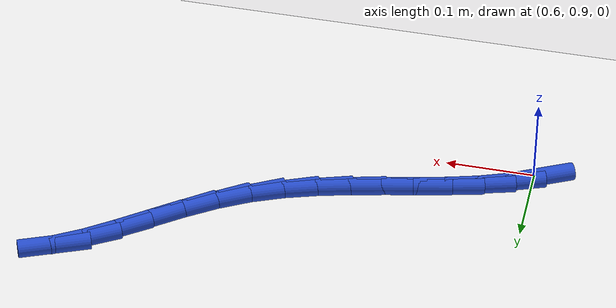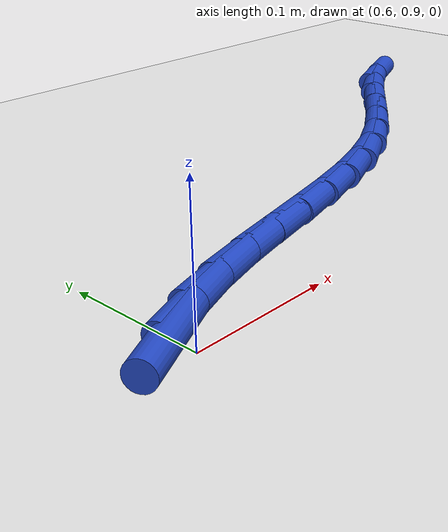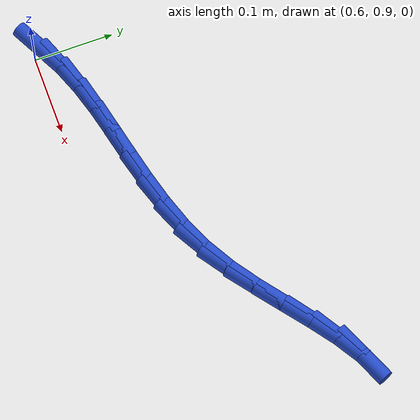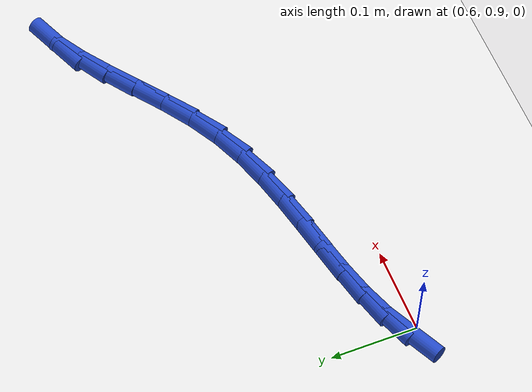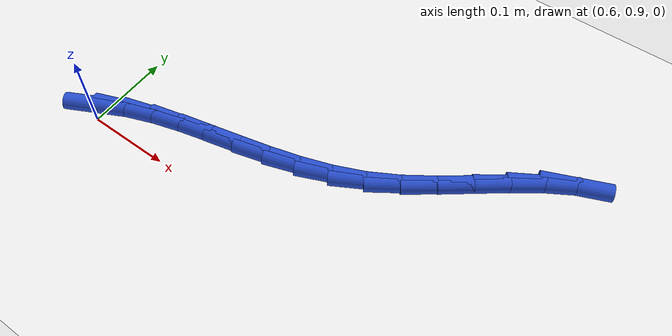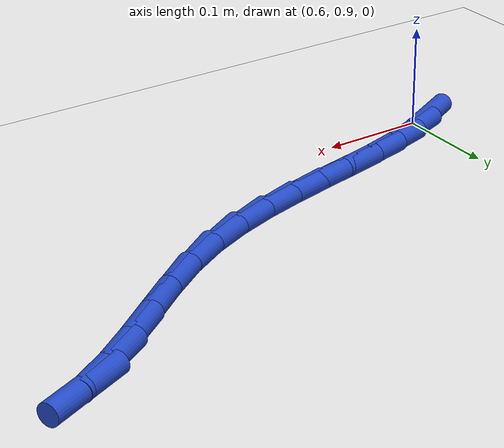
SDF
<sdf version="1.6">
 <world name="default">
  <model name="ground_plane">
   <static>1</static>
   <link name="link">
    <collision name="collision">
     <geometry><plane><normal>0 0 1</normal><size>100 100</size></plane></geometry>
     <surface><friction><ode><mu>100</mu><mu2>50</mu2></ode></friction></surface>
    </collision>
    <visual name="visual">
     <cast_shadows>0</cast_shadows>
     <geometry><plane><normal>0 0 1</normal><size>100 100</size></plane></geometry>
     <material>
      <script><uri>file://media/materials/scripts/gazebo.material</uri><name>Gazebo/WhiteGlow</name></script>
     </material>
    </visual>
   </link>
  </model>
  <model name="line">
   <link name="link_31">
    <pose>0.5928497393327049 0.9120968995679262 0.01 0 1.57 0.47000072901425355</pose>
    <collision name="collision">
     <geometry><cylinder><radius>0.01</radius><length>0.08</length></cylinder></geometry>
    </collision>
    <visual name="visual">
     <material>
      <script><name>Gazebo/Blue</name><uri>file://media/materials/scripts/gazebo.material</uri></script>
     </material>
     <geometry><cylinder><radius>0.01</radius><length>0.08</length></cylinder></geometry>
    </visual>
   </link>
   <link name="link_32">
    <pose>0.6231911719347277 0.927509340427059 0.01 0 1.57 0.36053438935371207</pose>
    <collision name="collision">
     <geometry><cylinder><radius>0.01</radius><length>0.08</length></cylinder></geometry>
    </collision>
    <visual name="visual">
     <material>
      <script><name>Gazebo/Blue</name><uri>file://media/materials/scripts/gazebo.material</uri></script>
     </material>
     <geometry><cylinder><radius>0.01</radius><length>0.08</length></cylinder></geometry>
    </visual>
   </link>
   <link name="link_33">
    <pose>0.6554221966028583 0.9396608581670598 0.01 0 1.57 0.28268333280211533</pose>
    <collision name="collision">
     <geometry><cylinder><radius>0.01</radius><length>0.08</length></cylinder></geometry>
    </collision>
    <visual name="visual">
     <material>
      <script><name>Gazebo/Blue</name><uri>file://media/materials/scripts/gazebo.material</uri></script>
     </material>
     <geometry><cylinder><radius>0.01</radius><length>0.08</length></cylinder></geometry>
    </visual>
   </link>
   <link name="link_34">
    <pose>0.6891720021524068 0.9494638869974044 0.01 0 1.57 0.2355085056326991</pose>
    <collision name="collision">
     <geometry><cylinder><radius>0.01</radius><length>0.08</length></cylinder></geometry>
    </collision>
    <visual name="visual">
     <material>
      <script><name>Gazebo/Blue</name><uri>file://media/materials/scripts/gazebo.material</uri></script>
     </material>
     <geometry><cylinder><radius>0.01</radius><length>0.08</length></cylinder></geometry>
    </visual>
   </link>
   <link name="link_35">
    <pose>0.7240666104640009 0.9578372469077019 0.01 0 1.57 0.21698126229757012</pose>
    <collision name="collision">
     <geometry><cylinder><radius>0.01</radius><length>0.08</length></cylinder></geometry>
    </collision>
    <visual name="visual">
     <material>
      <script><name>Gazebo/Blue</name><uri>file://media/materials/scripts/gazebo.material</uri></script>
     </material>
     <geometry><cylinder><radius>0.01</radius><length>0.08</length></cylinder></geometry>
    </visual>
   </link>
   <link name="link_36">
    <pose>0.7597320434182688 0.9656997578875618 0.01 0 1.57 0.225440373829663</pose>
    <collision name="collision">
     <geometry><cylinder><radius>0.01</radius><length>0.08</length></cylinder></geometry>
    </collision>
    <visual name="visual">
     <material>
      <script><name>Gazebo/Blue</name><uri>file://media/materials/scripts/gazebo.material</uri></script>
     </material>
     <geometry><cylinder><radius>0.01</radius><length>0.08</length></cylinder></geometry>
    </visual>
   </link>
   <link name="link_37">
    <pose>0.7957943228958384 0.9739702399265933 0.01 0 1.57 0.2599442628431979</pose>
    <collision name="collision">
     <geometry><cylinder><radius>0.01</radius><length>0.08</length></cylinder></geometry>
    </collision>
    <visual name="visual">
     <material>
      <script><name>Gazebo/Blue</name><uri>file://media/materials/scripts/gazebo.material</uri></script>
     </material>
     <geometry><cylinder><radius>0.01</radius><length>0.08</length></cylinder></geometry>
    </visual>
   </link>
   <link name="link_38">
    <pose>0.8318794707773378 0.9835675130144047 0.01 0 1.57 0.32002527751777865</pose>
    <collision name="collision">
     <geometry><cylinder><radius>0.01</radius><length>0.08</length></cylinder></geometry>
    </collision>
    <visual name="visual">
     <material>
      <script><name>Gazebo/Blue</name><uri>file://media/materials/scripts/gazebo.material</uri></script>
     </material>
     <geometry><cylinder><radius>0.01</radius><length>0.08</length></cylinder></geometry>
    </visual>
   </link>
   <link name="link_39">
    <pose>0.8676135089433947 0.9954103971406059 0.01 0 1.57 0.40497574484682314</pose>
    <collision name="collision">
     <geometry><cylinder><radius>0.01</radius><length>0.08</length></cylinder></geometry>
    </collision>
    <visual name="visual">
     <material>
      <script><name>Gazebo/Blue</name><uri>file://media/materials/scripts/gazebo.material</uri></script>
     </material>
     <geometry><cylinder><radius>0.01</radius><length>0.08</length></cylinder></geometry>
    </visual>
   </link>
   <link name="link_40">
    <pose>0.9026224592746372 1.0104177122948055 0.01 0 1.57 0.5106003617391673</pose>
    <collision name="collision">
     <geometry><cylinder><radius>0.01</radius><length>0.08</length></cylinder></geometry>
    </collision>
    <visual name="visual">
     <material>
      <script><name>Gazebo/Blue</name><uri>file://media/materials/scripts/gazebo.material</uri></script>
     </material>
     <geometry><cylinder><radius>0.01</radius><length>0.08</length></cylinder></geometry>
    </visual>
   </link>
   <link name="link_41">
    <pose>0.9365493048600816 1.029421739336805 0.01 0 1.57 0.5996888038411738</pose>
    <collision name="collision">
     <geometry><cylinder><radius>0.01</radius><length>0.08</length></cylinder></geometry>
    </collision>
    <visual name="visual">
     <material>
      <script><name>Gazebo/Blue</name><uri>file://media/materials/scripts/gazebo.material</uri></script>
     </material>
     <geometry><cylinder><radius>0.01</radius><length>0.08</length></cylinder></geometry>
    </visual>
   </link>
   <link name="link_42">
    <pose>0.9693173347401967 1.0518245878459385 0.01 0 1.57 0.6476635759384094</pose>
    <collision name="collision">
     <geometry><cylinder><radius>0.01</radius><length>0.08</length></cylinder></geometry>
    </collision>
    <visual name="visual">
     <material>
      <script><name>Gazebo/Blue</name><uri>file://media/materials/scripts/gazebo.material</uri></script>
     </material>
     <geometry><cylinder><radius>0.01</radius><length>0.08</length></cylinder></geometry>
    </visual>
   </link>
   <link name="link_43">
    <pose>1.001080038344064 1.0758538436968534 0.01 0 1.57 0.6570278179525036</pose>
    <collision name="collision">
     <geometry><cylinder><radius>0.01</radius><length>0.08</length></cylinder></geometry>
    </collision>
    <visual name="visual">
     <material>
      <script><name>Gazebo/Blue</name><uri>file://media/materials/scripts/gazebo.material</uri></script>
     </material>
     <geometry><cylinder><radius>0.01</radius><length>0.08</length></cylinder></geometry>
    </visual>
   </link>
   <link name="link_44">
    <pose>1.0319977232096125 1.099702305548983 0.01 0 1.57 0.6260400267948361</pose>
    <collision name="collision">
     <geometry><cylinder><radius>0.01</radius><length>0.08</length></cylinder></geometry>
    </collision>
    <visual name="visual">
     <material>
      <script><name>Gazebo/Blue</name><uri>file://media/materials/scripts/gazebo.material</uri></script>
     </material>
     <geometry><cylinder><radius>0.01</radius><length>0.08</length></cylinder></geometry>
    </visual>
   </link>
   <link name="link_45">
    <pose>1.0622306968747692 1.1215627720617598 0.01 0 1.57 0.5463415337071155</pose>
    <collision name="collision">
     <geometry><cylinder><radius>0.01</radius><length>0.08</length></cylinder></geometry>
    </collision>
    <visual name="visual">
     <material>
      <script><name>Gazebo/Blue</name><uri>file://media/materials/scripts/gazebo.material</uri></script>
     </material>
     <geometry><cylinder><radius>0.01</radius><length>0.08</length></cylinder></geometry>
    </visual>
   </link>
   <link name="link_46">
    <pose>1.091939266877463 1.139628041894617 0.01 0 1.57 0.40162442077815236</pose>
    <collision name="collision">
     <geometry><cylinder><radius>0.01</radius><length>0.08</length></cylinder></geometry>
    </collision>
    <visual name="visual">
     <material>
      <script><name>Gazebo/Blue</name><uri>file://media/materials/scripts/gazebo.material</uri></script>
     </material>
     <geometry><cylinder><radius>0.01</radius><length>0.08</length></cylinder></geometry>
    </visual>
   </link>
  </model>
 </world>
</sdf>
